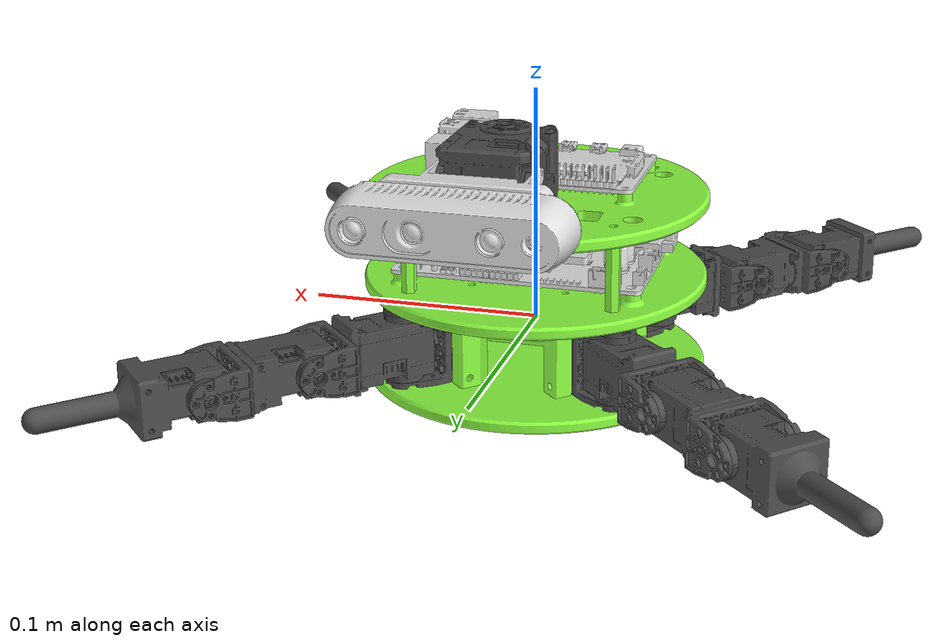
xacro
<?xml version="1.0" ?>
<robot name="topoquad" xmlns:xacro="http://www.ros.org/wiki/xacro">

<xacro:include filename="$(find topoquad_description)/gazebo/materials.xacro" />
<xacro:include filename="$(find topoquad_description)/gazebo/topoquad.gazebo" />
<xacro:include filename="$(find topoquad_description)/urdf/topoquad.trans" />

<link name="base_link">
  <visual>
    <origin xyz="0 0 0" rpy="0 0 0"/>
    <geometry>
      <mesh filename="package://topoquad_description/meshes/base_link.stl" scale="0.001 0.001 0.001"/>
    </geometry>
    <material name="light_green"/>
  </visual>
  <collision>
    <origin xyz="0 0 0" rpy="0 0 0"/>
    <geometry>
      <mesh filename="package://topoquad_description/meshes/base_link.stl" scale="0.001 0.001 0.001"/>
    </geometry>
  </collision>
</link>

<link name="base_inertia">
  <inertial>
    <origin xyz="-0.00042104482109471097 1.886023652127901e-16 -0.01208876855171899" rpy="0 0 0"/>
    <mass value="0.160"/> <!-- mass of base_link and battery -->
    <inertia ixx="0.00016" iyy="0.000158" izz="0.000284" ixy="0.0" iyz="0.0" ixz="-0.0"/>
  </inertial>
</link>

<link name="Leg_Hip_Yaw-Hip_Pitch_1">
  <inertial>
    <origin xyz="0.008275795980022913 0.008280303512164446 -0.014296773725820186" rpy="0 0 0"/>
    <mass value="0.030"/>
    <inertia ixx="3e-06" iyy="3e-06" izz="4e-06" ixy="-1e-06" iyz="0.0" ixz="0.0"/>
  </inertial>
  <visual>
    <origin xyz="-0.044548 -0.044548 -0.0146" rpy="0 0 0"/>
    <geometry>
      <mesh filename="package://topoquad_description/meshes/Leg_Hip_Yaw-Hip_Pitch_1.stl" scale="0.001 0.001 0.001"/>
    </geometry>
    <material name="dark"/>
  </visual>
</link>

<link name="Leg_Hip_Pitch-Knee_Pitch_1">
  <inertial>
    <origin xyz="-0.001830990956208714 0.018387603670428118 2.1720514535412624e-06" rpy="0 0 0"/>
    <mass value="0.030"/>
    <inertia ixx="3e-06" iyy="3e-06" izz="5e-06" ixy="-1e-06" iyz="0.0" ixz="-0.0"/>
  </inertial>
  <visual>
    <origin xyz="-0.086267 -0.065761 -0.0001" rpy="0 0 0"/>
    <geometry>
      <mesh filename="package://topoquad_description/meshes/Leg_Hip_Pitch-Knee_Pitch_1.stl" scale="0.001 0.001 0.001"/>
    </geometry>
    <material name="dark"/>
  </visual>
  <collision>
    <origin xyz="0.02121296 0.04171904  -4.0e-06" rpy="1.5707963267948966 0 0.7853981633974483"/>
    <geometry>
      <cylinder radius="0.015" length="0.035"/>
    </geometry>
  </collision>
</link>

<link name="Leg_Foot_1">
  <inertial>
    <origin xyz="0.0002588440546713866 0.020505814748426665 1.7389581104099416e-06" rpy="0 0 0"/>
    <mass value="0.030"/>
    <inertia ixx="4e-06" iyy="4e-06" izz="7e-06" ixy="-2e-06" iyz="0.0" ixz="0.0"/>
  </inertial>
  <visual>
    <origin xyz="-0.117733 -0.097227 -9.6e-05" rpy="0 0 0"/>
    <geometry>
      <mesh filename="package://topoquad_description/meshes/Leg_Foot_1.stl" scale="0.001 0.001 0.001"/>
    </geometry>
    <material name="dark"/>
  </visual>
  <collision>
    <origin xyz="0.03323401 0.05374011 0.0001" rpy="0 0 0"/>
    <geometry>
        <sphere radius="0.005"/>
    </geometry>
  </collision>
</link>

<link name="Leg_Hip_Yaw-Hip_Pitch_2">
  <inertial>
    <origin xyz="-0.008280303512164446 0.008275795980022913 -0.014296773725820186" rpy="0 0 0"/>
    <mass value="0.030"/>
    <inertia ixx="3e-06" iyy="3e-06" izz="4e-06" ixy="1e-06" iyz="0.0" ixz="-0.0"/>
  </inertial>
  <visual>
    <origin xyz="0.044548 -0.044548 -0.0146" rpy="0 0 0"/>
    <geometry>
      <mesh filename="package://topoquad_description/meshes/Leg_Hip_Yaw-Hip_Pitch_2.stl" scale="0.001 0.001 0.001"/>
    </geometry>
    <material name="dark"/>
  </visual>
</link>

<link name="Leg_Hip_Pitch-Knee_Pitch_2">
  <inertial>
    <origin xyz="-0.018387603506052397 -0.0018309911205844492 3.187606818864236e-06" rpy="0 0 0"/>
    <mass value="0.030"/>
    <inertia ixx="3e-06" iyy="3e-06" izz="5e-06" ixy="1e-06" iyz="-0.0" ixz="-0.0"/>
  </inertial>
  <visual>
    <origin xyz="0.065761 -0.086267 -0.0001" rpy="0 0 0"/>
    <geometry>
      <mesh filename="package://topoquad_description/meshes/Leg_Hip_Pitch-Knee_Pitch_2.stl" scale="0.001 0.001 0.001"/>
    </geometry>
    <material name="dark"/>
  </visual>
  <collision>
    <origin xyz="-0.04171904 0.02121296 4.0e-06" rpy="1.5707963267948966 0 -0.7853981633974483"/>
    <geometry>
      <cylinder radius="0.015" length="0.035"/>
    </geometry>
  </collision>
</link>

<link name="Leg_Foot_2">
  <inertial>
    <origin xyz="-0.020505814729665825 0.00025884403591058813 2.872762956151594e-06" rpy="0 0 0"/>
    <mass value="0.030"/>
    <inertia ixx="4e-06" iyy="4e-06" izz="7e-06" ixy="2e-06" iyz="-0.0" ixz="-0.0"/>
  </inertial>
  <visual>
    <origin xyz="0.097227 -0.117733 -0.0001" rpy="0 0 0"/>
    <geometry>
      <mesh filename="package://topoquad_description/meshes/Leg_Foot_2.stl" scale="0.001 0.001 0.001"/>
    </geometry>
    <material name="dark"/>
  </visual>
  <collision>
    <origin xyz="-0.05374011 0.03323401 -0.0001" rpy="0 0 0"/>
    <geometry>
        <sphere radius="0.005"/>
    </geometry>
  </collision>
</link>

<link name="Leg_Hip_Yaw-Hip_Pitch_3">
  <inertial>
    <origin xyz="-0.008275795980023051 -0.00828030351216475 -0.01429677372582087" rpy="0 0 0"/>
    <mass value="0.030"/>
    <inertia ixx="3e-06" iyy="3e-06" izz="4e-06" ixy="-1e-06" iyz="-0.0" ixz="-0.0"/>
  </inertial>
  <visual>
    <origin xyz="0.044548 0.044548 -0.0146" rpy="0 0 0"/>
    <geometry>
      <mesh filename="package://topoquad_description/meshes/Leg_Hip_Yaw-Hip_Pitch_3.stl" scale="0.001 0.001 0.001"/>
    </geometry>
    <material name="dark"/>
  </visual>
</link>

<link name="Leg_Hip_Pitch-Knee_Pitch_3">
  <inertial>
    <origin xyz="0.0018309909562085613 -0.01838760367042834 2.172051453599064e-06" rpy="0 0 0"/>
    <mass value="0.030"/>
    <inertia ixx="3e-06" iyy="3e-06" izz="5e-06" ixy="-1e-06" iyz="-0.0" ixz="0.0"/>
  </inertial>
  <visual>
    <origin xyz="0.086267 0.065761 -0.0001" rpy="0 0 0"/>
    <geometry>
      <mesh filename="package://topoquad_description/meshes/Leg_Hip_Pitch-Knee_Pitch_3.stl" scale="0.001 0.001 0.001"/>
    </geometry>
    <material name="dark"/>
  </visual>
  <collision>
    <origin xyz="-0.02121296 -0.04171904  -4.0e-06" rpy="1.5707963267948966 0 0.7853981633974483"/>
    <geometry>
      <cylinder radius="0.015" length="0.035"/>
    </geometry>
  </collision>
</link>

<link name="Leg_Foot_3">
  <inertial>
    <origin xyz="-0.0002588440546715809 -0.02050581474842711 1.7389581112604982e-06" rpy="0 0 0"/>
    <mass value="0.030"/>
    <inertia ixx="4e-06" iyy="4e-06" izz="7e-06" ixy="-2e-06" iyz="-0.0" ixz="-0.0"/>
  </inertial>
  <visual>
    <origin xyz="0.117733 0.097227 -9.6e-05" rpy="0 0 0"/>
    <geometry>
      <mesh filename="package://topoquad_description/meshes/Leg_Foot_3.stl" scale="0.001 0.001 0.001"/>
    </geometry>
    <material name="dark"/>
  </visual>
  <collision>
    <origin xyz="-0.03323401 -0.05374011 0.0001" rpy="0 0 0"/>
    <geometry>
        <sphere radius="0.005"/>
    </geometry>
  </collision>
</link>

<link name="Leg_Hip_Yaw-Hip_Pitch_4">
  <inertial>
    <origin xyz="0.008280303512164737 -0.008275795980023044 -0.014296773725821391" rpy="0 0 0"/>
    <mass value="0.030"/>
    <inertia ixx="3e-06" iyy="3e-06" izz="4e-06" ixy="1e-06" iyz="-0.0" ixz="0.0"/>
  </inertial>
  <visual>
    <origin xyz="-0.044548 0.044548 -0.0146" rpy="0 0 0"/>
    <geometry>
      <mesh filename="package://topoquad_description/meshes/Leg_Hip_Yaw-Hip_Pitch_4.stl" scale="0.001 0.001 0.001"/>
    </geometry>
    <material name="dark"/>
  </visual>
</link>

<link name="Leg_Hip_Pitch-Knee_Pitch_4">
  <inertial>
    <origin xyz="0.018387603670428465 0.0018309909562084087 2.172051453060744e-06" rpy="0 0 0"/>
    <mass value="0.030"/>
    <inertia ixx="3e-06" iyy="3e-06" izz="5e-06" ixy="1e-06" iyz="0.0" ixz="0.0"/>
  </inertial>
  <visual>
    <origin xyz="-0.065761 0.086267 -0.0001" rpy="0 0 0"/>
    <geometry>
      <mesh filename="package://topoquad_description/meshes/Leg_Hip_Pitch-Knee_Pitch_4.stl" scale="0.001 0.001 0.001"/>
    </geometry>
    <material name="dark"/>
  </visual>
  <collision>
    <origin xyz="0.04171904 -0.02121296 4.0e-06" rpy="1.5707963267948966 0 -0.7853981633974483"/>
    <geometry>
      <cylinder radius="0.015" length="0.035"/>
    </geometry>
  </collision>
</link>

<link name="Leg_Foot_4">
  <inertial>
    <origin xyz="0.020505814748427456 -0.000258844054671567 1.7389581107002638e-06" rpy="0 0 0"/>
    <mass value="0.030"/>
    <inertia ixx="4e-06" iyy="4e-06" izz="7e-06" ixy="2e-06" iyz="-0.0" ixz="0.0"/>
  </inertial>
  <visual>
    <origin xyz="-0.097227 0.117733 -9.6e-05" rpy="0 0 0"/>
    <geometry>
      <mesh filename="package://topoquad_description/meshes/Leg_Foot_4.stl" scale="0.001 0.001 0.001"/>
    </geometry>
    <material name="dark"/>
  </visual>
  <collision>
    <origin xyz="0.05374011 -0.03323401 -0.0001" rpy="0 0 0"/>
    <geometry>
        <sphere radius="0.005"/>
    </geometry>
  </collision>
</link>

<link name="Leg_Base_1">
  <inertial>
    <origin xyz="-0.00029446900398619885 -0.00029447062550457676 1.0858331483845456e-10" rpy="0 0 0"/>
    <mass value="0.005"/>
    <inertia ixx="1e-06" iyy="1e-06" izz="1e-06" ixy="-0.0" iyz="-0.0" ixz="-0.0"/>
  </inertial>
  <visual>
    <origin xyz="-0.032527 -0.032527 -0.0001" rpy="0 0 0"/>
    <geometry>
      <mesh filename="package://topoquad_description/meshes/Leg_Base_1.stl" scale="0.001 0.001 0.001"/>
    </geometry>
    <material name="dark"/>
  </visual>

</link>

<link name="Leg_Base_2">
  <inertial>
    <origin xyz="0.00029447062550457676 -0.00029446900398619885 1.0858331483845456e-10" rpy="0 0 0"/>
    <mass value="0.005"/>
    <inertia ixx="1e-06" iyy="1e-06" izz="1e-06" ixy="0.0" iyz="-0.0" ixz="0.0"/>
  </inertial>
  <visual>
    <origin xyz="0.032527 -0.032527 -0.0001" rpy="0 0 0"/>
    <geometry>
      <mesh filename="package://topoquad_description/meshes/Leg_Base_2.stl" scale="0.001 0.001 0.001"/>
    </geometry>
    <material name="dark"/>
  </visual>

</link>

<link name="Leg_Base_3">
  <inertial>
    <origin xyz="0.00029446900398600456 0.00029447062550432 1.0858305406072702e-10" rpy="0 0 0"/>
    <mass value="0.005"/>
    <inertia ixx="1e-06" iyy="1e-06" izz="1e-06" ixy="-0.0" iyz="0.0" ixz="0.0"/>
  </inertial>
  <visual>
    <origin xyz="0.032527 0.032527 -0.0001" rpy="0 0 0"/>
    <geometry>
      <mesh filename="package://topoquad_description/meshes/Leg_Base_3.stl" scale="0.001 0.001 0.001"/>
    </geometry>
    <material name="dark"/>
  </visual>

</link>

<link name="Leg_Base_4">
  <inertial>
    <origin xyz="-0.00029447062550429226 0.0002944690039859907 1.0858305682544256e-10" rpy="0 0 0"/>
    <mass value="0.005"/>
    <inertia ixx="1e-06" iyy="1e-06" izz="1e-06" ixy="0.0" iyz="0.0" ixz="-0.0"/>
  </inertial>
  <visual>
    <origin xyz="-0.032527 0.032527 -0.0001" rpy="0 0 0"/>
    <geometry>
      <mesh filename="package://topoquad_description/meshes/Leg_Base_4.stl" scale="0.001 0.001 0.001"/>
    </geometry>
    <material name="dark"/>
  </visual>
</link>

<link name="Layer_Second_with_Spacer_1">
  <inertial>
    <origin xyz="5.017947999737173e-15 -0.00015187607502035533 0.06014814419419935" rpy="0 0 0"/>
    <mass value="0.085"/>
    <inertia ixx="0.000113" iyy="0.000114" izz="0.000225" ixy="-0.0" iyz="0.0" ixz="0.0"/>
  </inertial>
  <visual>
    <origin xyz="0.0 -0.0 0.0396" rpy="0 0 0"/>
    <geometry>
      <mesh filename="package://topoquad_description/meshes/Layer_Second_with_Spacer_1.stl" scale="0.001 0.001 0.001"/>
    </geometry>
    <material name="light_green"/>
  </visual>

</link>

<link name="AIIT-Layer_Third_v9_1">
  <inertial>
    <origin xyz="0.00015902097613279596 -0.0004732515784768624 0.015027958744617431" rpy="0 0 0"/>
    <mass value="0.080"/>
    <inertia ixx="0.000105" iyy="0.000105" izz="0.00021" ixy="-1e-06" iyz="0.0" ixz="0.0"/>
  </inertial>
  <visual>
    <origin xyz="-0.0 -0.0 -0.04" rpy="0 0 0"/>
    <geometry>
      <mesh filename="package://topoquad_description/meshes/AIIT-Layer_Third_v9_1.stl" scale="0.001 0.001 0.001"/>
    </geometry>
    <material name="light_green"/>
  </visual>
  <collision>
    <origin xyz="-0.0 -0.0 -0.04" rpy="0 0 0"/>
    <geometry>
      <mesh filename="package://topoquad_description/meshes/AIIT-Layer_Third_v9_1.stl" scale="0.001 0.001 0.001"/>
    </geometry>
  </collision>
</link>

<link name="2XC430_v1_1">
  <inertial>
    <origin xyz="0.0005169167054052409 0.012000152443245933 0.01848298942307839" rpy="0 0 0"/>
    <mass value="0.100"/>
    <inertia ixx="1.6e-05" iyy="1.2e-05" izz="1.6e-05" ixy="-0.0" iyz="-0.0" ixz="-0.0"/>
  </inertial>
  <visual>
    <origin xyz="-0.0 -0.045 -0.0575" rpy="0 0 0"/>
    <geometry>
      <mesh filename="package://topoquad_description/meshes/2XC430_v1_1.stl" scale="0.001 0.001 0.001"/>
    </geometry>
    <material name="dark"/>
  </visual>
</link>

<link name="Pan-Tilt_Unit_v5_1">
  <inertial>
    <origin xyz="-0.02004207680039613 0.0418519234214548 -2.0770072362827352e-05" rpy="0 0 0"/>
    <mass value="0.060"/>
    <inertia ixx="8e-06" iyy="2.9e-05" izz="3.2e-05" ixy="0.0" iyz="0.0" ixz="-0.0"/>
  </inertial>
  <visual>
    <origin xyz="-0.019 -0.069 -0.0765" rpy="0 0 0"/>
    <geometry>
      <mesh filename="package://topoquad_description/meshes/Pan-Tilt_Unit_v5_1.stl" scale="0.001 0.001 0.001"/>
    </geometry>
    <material name="silver"/>
  </visual>
  <collision>
    <origin xyz="-0.019 -0.069 -0.0765" rpy="0 0 0"/>
    <geometry>
      <mesh filename="package://topoquad_description/meshes/Pan-Tilt_Unit_v5_1.stl" scale="0.001 0.001 0.001"/>
    </geometry>
  </collision>
</link>

<link name="OpenCR_v1_1">
  <inertial>
    <origin xyz="-0.05443046180039381 0.03160955062376951 0.0025977515138763917" rpy="0 0 0"/>
    <mass value="0.067"/>
    <inertia ixx="3e-05" iyy="4.3e-05" izz="5.7e-05" ixy="0.0" iyz="0.0" ixz="-1e-06"/>
  </inertial>
  <visual>
    <origin xyz="-0.048 0.033 -0.0275" rpy="0 0 0"/>
    <geometry>
      <mesh filename="package://topoquad_description/meshes/OpenCR_v1_1.stl" scale="0.001 0.001 0.001"/>
    </geometry>
    <material name="silver"/>
  </visual>

</link>

<link name="Raspberry_Pi_4_Model_B_v1_1">
  <inertial>
    <origin xyz="-0.004472753962607014 0.025044400681160393 0.00500412850423039" rpy="0 0 0"/>
    <mass value="0.018729261224014644"/>
    <inertia ixx="5e-06" iyy="1.3e-05" izz="1.7e-05" ixy="0.0" iyz="0.0" ixz="-1e-06"/>
  </inertial>
  <visual>
    <origin xyz="-0.0175 0.0365 -0.0625" rpy="0 0 0"/>
    <geometry>
      <mesh filename="package://topoquad_description/meshes/Raspberry_Pi_4_Model_B_v1_1.stl" scale="0.001 0.001 0.001"/>
    </geometry>
    <material name="silver"/>
  </visual>

</link>

<link name="3P_JST_Expansion_Board_v1_1">
  <visual>
    <origin xyz="-0.0145 0.048 -0.0275" rpy="0 0 0"/>
    <geometry>
      <mesh filename="package://topoquad_description/meshes/3P_JST_Expansion_Board_v1_1.stl" scale="0.001 0.001 0.001"/>
    </geometry>
    <material name="silver"/>
  </visual>

</link>

<link name="imu_link">
  <inertial>
    <origin xyz="0 0 0" rpy="0 0 0"/>
    <mass value="0.001"/>
    <inertia ixx="1e-06" iyy="1e-06" izz="1e-06" ixy="0.0" iyz="0.0" ixz="0.0"/>
  </inertial>
  <visual>
    <origin xyz="0 0 0" rpy="0 0 0"/>
    <geometry>
      <box size="0.01 0.01 0.01"/>
    </geometry>
    <material name="silver"/>
  </visual>

</link>

<joint name="base_inertia_fixed" type="fixed">
  <origin xyz="0 0 0" rpy="0 0 0"/>
  <parent link="base_link"/>
  <child link="base_inertia"/>
</joint>

<joint name="FR_hip_yaw" type="revolute">
  <origin xyz="0.012021 0.012021 0.0145" rpy="0 0 0"/>
  <parent link="Leg_Base_1"/>
  <child link="Leg_Hip_Yaw-Hip_Pitch_1"/>
  <axis xyz="0.0 0.0 1.0"/>
  <limit upper="1.570796" lower="-1.570796" effort="100" velocity="100"/>
</joint>

<joint name="FR_hip_pitch" type="revolute">
  <origin xyz="0.041719 0.021213 -0.0145" rpy="0 0 0"/>
  <parent link="Leg_Hip_Yaw-Hip_Pitch_1"/>
  <child link="Leg_Hip_Pitch-Knee_Pitch_1"/>
  <axis xyz="-0.707107 0.707107 -0.0"/>
  <limit upper="1.570796" lower="-1.570796" effort="100" velocity="100"/>
</joint>

<joint name="FR_knee_pitch" type="revolute">
  <origin xyz="0.031466 0.031466 -4e-06" rpy="0 0 0"/>
  <parent link="Leg_Hip_Pitch-Knee_Pitch_1"/>
  <child link="Leg_Foot_1"/>
  <axis xyz="-0.707107 0.707107 0.0"/>
  <limit upper="1.570796" lower="-1.570796" effort="100" velocity="100"/>
</joint>

<joint name="FL_hip_yaw" type="revolute">
  <origin xyz="-0.012021 0.012021 0.0145" rpy="0 0 0"/>
  <parent link="Leg_Base_2"/>
  <child link="Leg_Hip_Yaw-Hip_Pitch_2"/>
  <axis xyz="-0.0 0.0 1.0"/>
  <limit upper="1.570796" lower="-1.570796" effort="100" velocity="100"/>
</joint>

<joint name="FL_hip_pitch" type="revolute">
  <origin xyz="-0.021213 0.041719 -0.0145" rpy="0 0 0"/>
  <parent link="Leg_Hip_Yaw-Hip_Pitch_2"/>
  <child link="Leg_Hip_Pitch-Knee_Pitch_2"/>
  <axis xyz="-0.707107 -0.707107 -0.0"/>
  <limit upper="1.570796" lower="-1.570796" effort="100" velocity="100"/>
</joint>

<joint name="FL_knee_pitch" type="revolute">
  <origin xyz="-0.031466 0.031466 0.0" rpy="0 0 0"/>
  <parent link="Leg_Hip_Pitch-Knee_Pitch_2"/>
  <child link="Leg_Foot_2"/>
  <axis xyz="-0.707107 -0.707107 0.0"/>
  <limit upper="1.570796" lower="-1.570796" effort="100" velocity="100"/>
</joint>

<joint name="BL_hip_yaw" type="revolute">
  <origin xyz="-0.012021 -0.012021 0.0145" rpy="0 0 0"/>
  <parent link="Leg_Base_3"/>
  <child link="Leg_Hip_Yaw-Hip_Pitch_3"/>
  <axis xyz="-0.0 -0.0 1.0"/>
  <limit upper="1.570796" lower="-1.570796" effort="100" velocity="100"/>
</joint>

<joint name="BL_hip_pitch" type="revolute">
  <origin xyz="-0.041719 -0.021213 -0.0145" rpy="0 0 0"/>
  <parent link="Leg_Hip_Yaw-Hip_Pitch_3"/>
  <child link="Leg_Hip_Pitch-Knee_Pitch_3"/>
  <axis xyz="0.707107 -0.707107 0.0"/>
  <limit upper="1.570796" lower="-1.570796" effort="100" velocity="100"/>
</joint>

<joint name="BL_knee_pitch" type="revolute">
  <origin xyz="-0.031466 -0.031466 -4e-06" rpy="0 0 0"/>
  <parent link="Leg_Hip_Pitch-Knee_Pitch_3"/>
  <child link="Leg_Foot_3"/>
  <axis xyz="0.707107 -0.707107 -0.0"/>
  <limit upper="1.570796" lower="-1.570796" effort="100" velocity="100"/>
</joint>

<joint name="BR_hip_yaw" type="revolute">
  <origin xyz="0.012021 -0.012021 0.0145" rpy="0 0 0"/>
  <parent link="Leg_Base_4"/>
  <child link="Leg_Hip_Yaw-Hip_Pitch_4"/>
  <axis xyz="0.0 -0.0 1.0"/>
  <limit upper="1.570796" lower="-1.570796" effort="100" velocity="100"/>
</joint>

<joint name="BR_hip_pitch" type="revolute">
  <origin xyz="0.021213 -0.041719 -0.0145" rpy="0 0 0"/>
  <parent link="Leg_Hip_Yaw-Hip_Pitch_4"/>
  <child link="Leg_Hip_Pitch-Knee_Pitch_4"/>
  <axis xyz="0.707107 0.707107 -0.0"/>
  <limit upper="1.570796" lower="-1.570796" effort="100" velocity="100"/>
</joint>

<joint name="BR_knee_pitch" type="revolute">
  <origin xyz="0.031466 -0.031466 -4e-06" rpy="0 0 0"/>
  <parent link="Leg_Hip_Pitch-Knee_Pitch_4"/>
  <child link="Leg_Foot_4"/>
  <axis xyz="0.707107 0.707107 0.0"/>
  <limit upper="1.570796" lower="-1.570796" effort="100" velocity="100"/>
</joint>

<joint name="joint_21" type="fixed">
  <origin xyz="0.032527 0.032527 0.0001" rpy="0 0 0"/>
  <parent link="base_link"/>
  <child link="Leg_Base_1"/>
</joint>

<joint name="joint_22" type="fixed">
  <origin xyz="-0.032527 0.032527 0.0001" rpy="0 0 0"/>
  <parent link="base_link"/>
  <child link="Leg_Base_2"/>
</joint>

<joint name="joint_23" type="fixed">
  <origin xyz="-0.032527 -0.032527 0.0001" rpy="0 0 0"/>
  <parent link="base_link"/>
  <child link="Leg_Base_3"/>
</joint>

<joint name="joint_24" type="fixed">
  <origin xyz="0.032527 -0.032527 0.0001" rpy="0 0 0"/>
  <parent link="base_link"/>
  <child link="Leg_Base_4"/>
</joint>

<joint name="joint_26" type="fixed">
  <origin xyz="0.0 0.0 -0.0396" rpy="0 0 0"/>
  <parent link="base_link"/>
  <child link="Layer_Second_with_Spacer_1"/>
</joint>

<joint name="joint_27" type="fixed">
  <origin xyz="0.0 0.0 0.0796" rpy="0 0 0"/>
  <parent link="Layer_Second_with_Spacer_1"/>
  <child link="AIIT-Layer_Third_v9_1"/>
</joint>

<joint name="neck_pan" type="revolute">
  <origin xyz="0.0 0.045 0.0175" rpy="0 0 0"/>
  <parent link="AIIT-Layer_Third_v9_1"/>
  <child link="2XC430_v1_1"/>
  <axis xyz="0.0 0.0 -1.0"/>
  <limit upper="1.570796" lower="-1.570796" effort="100" velocity="100"/>
</joint>

<joint name="neck_tilt" type="revolute">
  <origin xyz="0.019 0.024 0.019" rpy="0 0 0"/>
  <parent link="2XC430_v1_1"/>
  <child link="Pan-Tilt_Unit_v5_1"/>
  <axis xyz="1.0 -0.0 0.0"/>
  <limit upper="1.570796" lower="-1.570796" effort="100" velocity="100"/>
</joint>

<joint name="joint_31" type="fixed">
  <origin xyz="0.048 -0.033 0.0671" rpy="0 0 0"/>
  <parent link="Layer_Second_with_Spacer_1"/>
  <child link="OpenCR_v1_1"/>
</joint>

<joint name="joint_32" type="fixed">
  <origin xyz="0.0175 -0.0365 0.0225" rpy="0 0 0"/>
  <parent link="AIIT-Layer_Third_v9_1"/>
  <child link="Raspberry_Pi_4_Model_B_v1_1"/>
</joint>

<joint name="joint_33" type="fixed">
  <origin xyz="0.0145 -0.048 0.0671" rpy="0 0 0"/>
  <parent link="Layer_Second_with_Spacer_1"/>
  <child link="3P_JST_Expansion_Board_v1_1"/>
</joint>

<joint name="joint_imu" type="fixed">
  <origin xyz="0.0 0.0 0.05" rpy="0 0 0"/>
  <parent link="Layer_Second_with_Spacer_1"/>
  <child link="imu_link"/>
</joint>

</robot>

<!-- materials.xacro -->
<!--
Copied from open_manipulator example -
https://github.com/ROBOTIS-GIT/open_manipulator/blob/foxy-devel/open_manipulator_x_description/urdf/materials.xacro
-->

<robot name="topoquad" xmlns:xacro="http://www.ros.org/wiki/xacro" >

<material name="silver">
  <color rgba="0.900 0.900 0.900 1.000"/>
</material>

<material name="light_green">
  <color rgba="0.55 1.00 0.25 1.00"/>
</material>

  <material name="black">
    <color rgba="0.0 0.0 0.0 1.0"/>
  </material>

  <material name="blue">
    <color rgba="0.0 0.0 0.8 1.0"/>
  </material>

  <material name="brown">
    <color rgba="0.8706 0.8118 0.7647 1.0"/>
  </material>

  <material name="dark">
    <color rgba="0.3 0.3 0.3 1.0"/>
  </material>

  <material name="green">
    <color rgba="0.0 0.8 0.0 1.0"/>
  </material>

  <material name="grey">
    <color rgba="0.5 0.5 0.5 1.0"/>
  </material>

  <material name="light_black">
    <color rgba="0.4 0.4 0.4 1.0"/>
  </material>

  <material name="orange">
    <color rgba="1.0 0.4235 0.0392 1.0"/>
  </material>

  <material name="red">
    <color rgba="0.8 0.0 0.0 1.0"/>
  </material>

  <material name="white">
    <color rgba="1.0 1.0 1.0 1.0"/>
  </material>

</robot>
